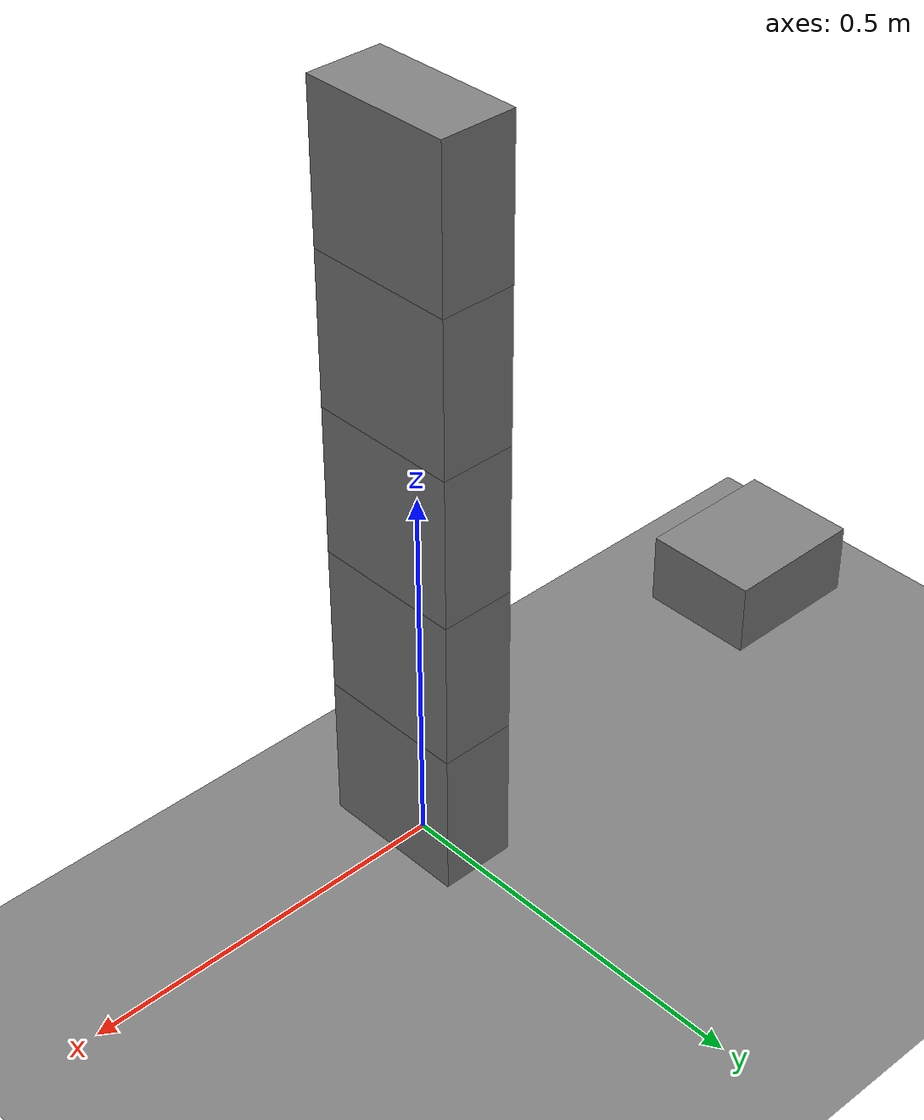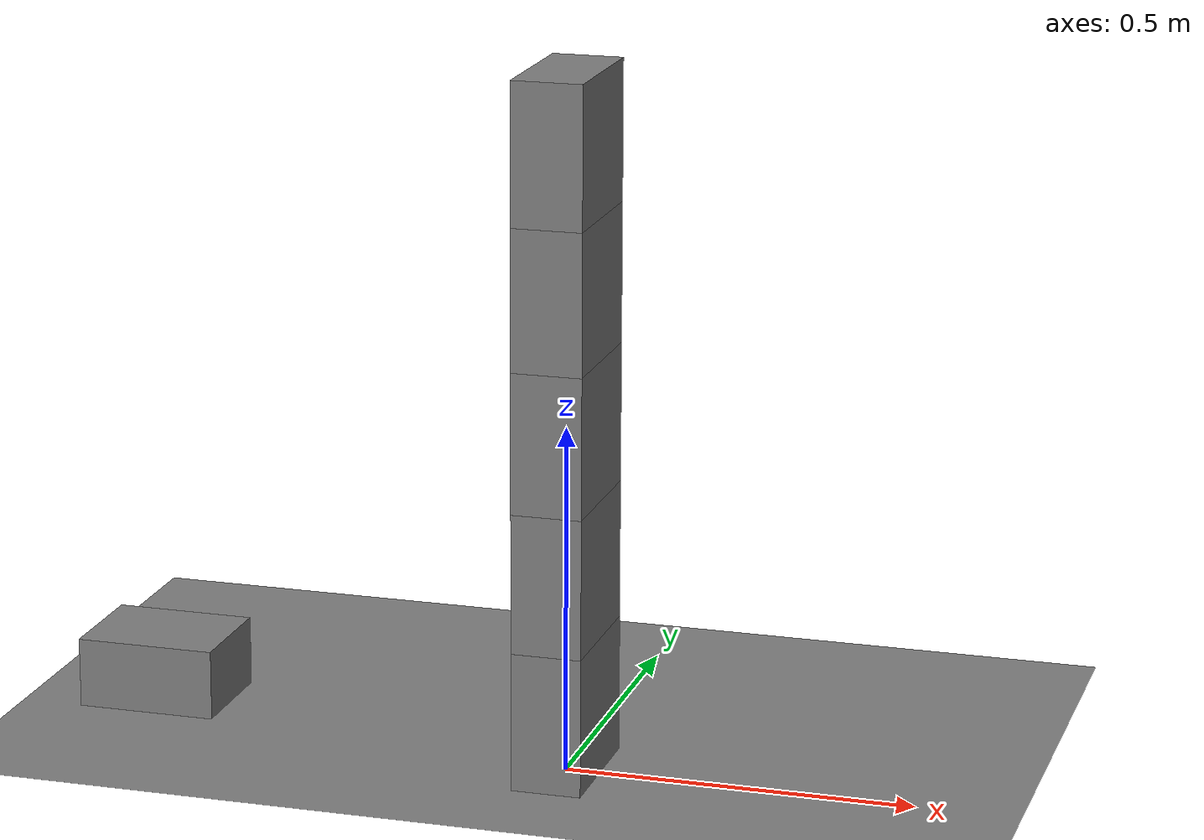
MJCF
<mujoco model="stack_fixture">
  <option timestep="0.002"/>
  <worldbody>
    <geom name="floor" type="plane" size="6 6 0.1" friction="0.6 0.005 0.0001"/>
    <body name="block1" pos="0 0 0.100">
      <freejoint/>
      <geom name="block1" type="box" size="0.05 0.1 0.1" mass="0.5" friction="0.25 0.005 0.0001"/>
    </body>
    <body name="block2" pos="0 0 0.300">
      <freejoint/>
      <geom name="block2" type="box" size="0.05 0.1 0.1" mass="0.5" friction="0.25 0.005 0.0001"/>
    </body>
    <body name="block3" pos="0 0 0.500">
      <freejoint/>
      <geom name="block3" type="box" size="0.05 0.1 0.1" mass="0.5" friction="0.25 0.005 0.0001"/>
    </body>
    <body name="block4" pos="0 0 0.700">
      <freejoint/>
      <geom name="block4" type="box" size="0.05 0.1 0.1" mass="0.5" friction="0.25 0.005 0.0001"/>
    </body>
    <body name="block5" pos="0 0 0.900">
      <freejoint/>
      <geom name="block5" type="box" size="0.05 0.1 0.1" mass="0.5" friction="0.25 0.005 0.0001"/>
    </body>
    <body name="pusher" pos="-0.6 0 0.1">
      <joint name="pusher_slide" type="slide" axis="1 0 0" limited="true" range="-0.1 0.53"/>
      <geom name="pusher" type="box" size="0.1 0.08 0.05" mass="5.0" friction="0.3 0.005 0.0001"/>
    </body>
  </worldbody>
  <keyframe>
    <key name="start" qpos="0 0 0.100 1 0 0 0  0 0 0.300 1 0 0 0  0 0 0.500 1 0 0 0  0 0 0.700 1 0 0 0  0 0 0.900 1 0 0 0  0" qvel="0 0 0 0 0 0  0 0 0 0 0 0  0 0 0 0 0 0  0 0 0 0 0 0  0 0 0 0 0 0  1.2"/>
  </keyframe>
</mujoco>
